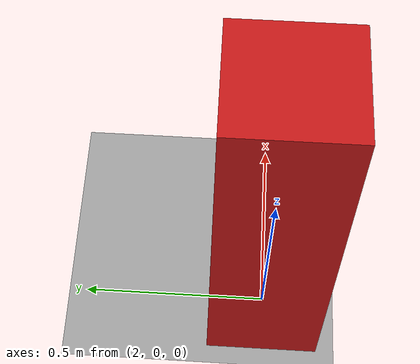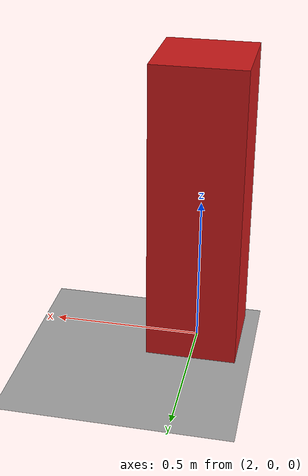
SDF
<?xml version="1.0"?>
<sdf version="1.6"><world name="default">
  <physics name="default" type="ode"><max_step_size>0.001</max_step_size><real_time_update_rate>1000</real_time_update_rate></physics>
  <scene><ambient>0.6 0.6 0.6 1</ambient><background>0.5 0.6 0.7 1</background></scene>
  <light name="sun" type="directional"><cast_shadows>true</cast_shadows><pose>0 0 10 0 0 0</pose><diffuse>0.8 0.8 0.8 1</diffuse><specular>0.1 0.1 0.1 1</specular><direction>-0.5 0.1 -0.9</direction></light>
  <model name="ground"><static>true</static><link name="ground_link"><collision name="collision"><geometry><plane><normal>0 0 1</normal><size>100 100</size></plane></geometry></collision><visual name="visual"><geometry><plane><normal>0 0 1</normal><size>100 100</size></plane></geometry><material><ambient>0.65 0.65 0.65 1</ambient><diffuse>0.65 0.65 0.65 1</diffuse></material></visual></link></model>
  <model name="target"><static>true</static><pose>2 0 0.5 0 0 0</pose><link name="target_link"><collision name="collision"><geometry><box><size>0.3 0.3 1</size></box></geometry></collision><visual name="visual"><geometry><box><size>0.3 0.3 1</size></box></geometry><material><ambient>0.8 0.1 0.1 1</ambient><diffuse>0.8 0.1 0.1 1</diffuse></material></visual></link></model>
</world></sdf>
